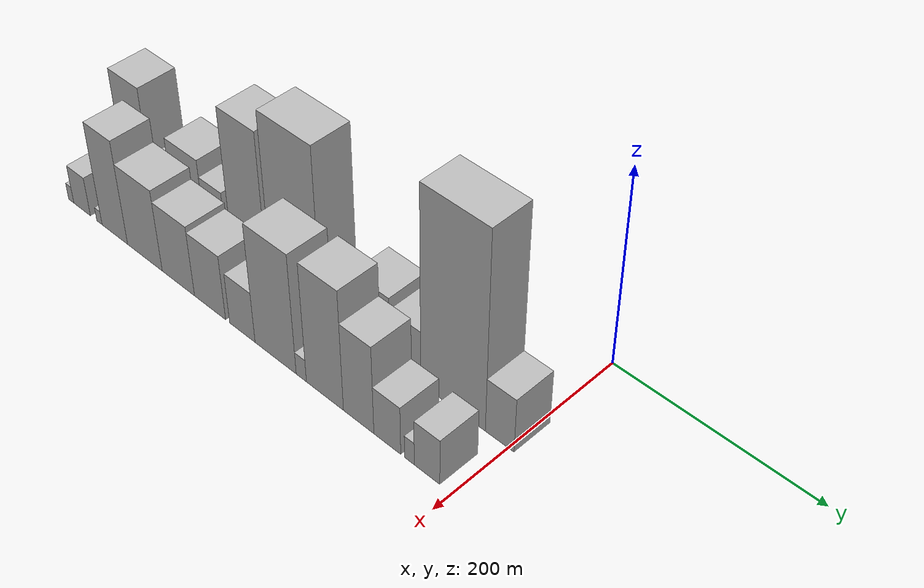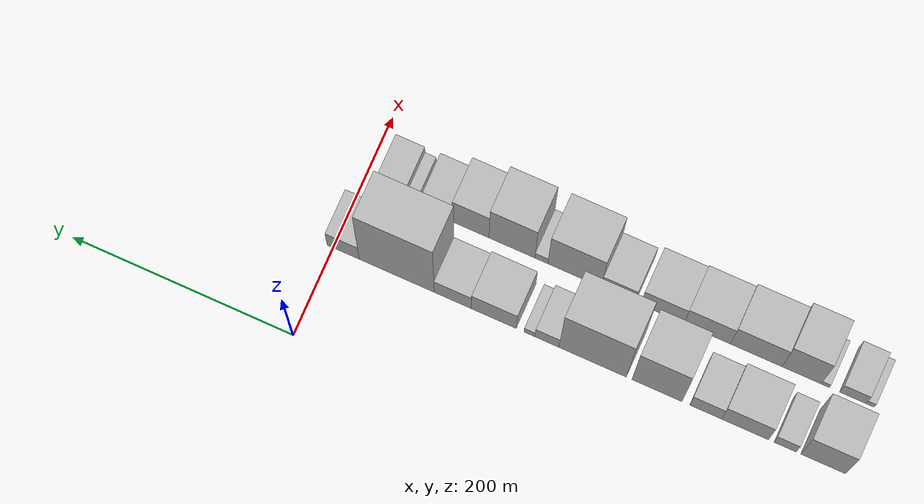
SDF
<sdf version="1.6">
 <world name="default">
  <model name="building_1">
   <static>1</static>
   <pose>100.0000 -440.0849 0 0.000000 0.000000 0.000000</pose>
   <link name="link">
    <pose>0 0 54.00 0 0 0</pose>
    <collision name="collision"><geometry><box><size>40.0000 39.8303 108.0000</size></box></geometry></collision>
    <visual name="visual">
     <cast_shadows>0</cast_shadows>
     <geometry><box><size>40.0000 39.8303 108.0000</size></box></geometry>
     <material>
      <script>
       <uri>model://HANNAS_wall/materials/scripts</uri>
       <uri>model://HANNAS_wall/materials/textures</uri>
       <name>vrc/HANNAS_wall</name>
      </script>
     </material>
    </visual>
   </link>
  </model>
  <model name="building_2">
   <static>1</static>
   <pose>100.0000 -406.2775 0 0.000000 0.000000 0.000000</pose>
   <link name="link">
    <pose>0 0 19.50 0 0 0</pose>
    <collision name="collision"><geometry><box><size>40.0000 19.7844 39.0000</size></box></geometry></collision>
    <visual name="visual">
     <cast_shadows>0</cast_shadows>
     <geometry><box><size>40.0000 19.7844 39.0000</size></box></geometry>
     <material>
      <script>
       <uri>model://HANNAS_wall/materials/scripts</uri>
       <uri>model://HANNAS_wall/materials/textures</uri>
       <name>vrc/HANNAS_wall</name>
      </script>
     </material>
    </visual>
   </link>
  </model>
  <model name="building_3">
   <static>1</static>
   <pose>100.0000 -370.4484 0 0.000000 0.000000 0.000000</pose>
   <link name="link">
    <pose>0 0 36.00 0 0 0</pose>
    <collision name="collision"><geometry><box><size>40.0000 41.8738 72.0000</size></box></geometry></collision>
    <visual name="visual">
     <cast_shadows>0</cast_shadows>
     <geometry><box><size>40.0000 41.8738 72.0000</size></box></geometry>
     <material>
      <script>
       <uri>model://HANNAS_wall/materials/scripts</uri>
       <uri>model://HANNAS_wall/materials/textures</uri>
       <name>vrc/HANNAS_wall</name>
      </script>
     </material>
    </visual>
   </link>
  </model>
  <model name="building_4">
   <static>1</static>
   <pose>100.0000 -335.2728 0 0.000000 0.000000 0.000000</pose>
   <link name="link">
    <pose>0 0 27.00 0 0 0</pose>
    <collision name="collision"><geometry><box><size>40.0000 28.4775 54.0000</size></box></geometry></collision>
    <visual name="visual">
     <cast_shadows>0</cast_shadows>
     <geometry><box><size>40.0000 28.4775 54.0000</size></box></geometry>
     <material>
      <script>
       <uri>model://HANNAS_wall/materials/scripts</uri>
       <uri>model://HANNAS_wall/materials/textures</uri>
       <name>vrc/HANNAS_wall</name>
      </script>
     </material>
    </visual>
   </link>
  </model>
  <model name="building_5">
   <static>1</static>
   <pose>100.0000 -291.6385 0 0.000000 0.000000 0.000000</pose>
   <link name="link">
    <pose>0 0 73.50 0 0 0</pose>
    <collision name="collision"><geometry><box><size>40.0000 44.7910 147.0000</size></box></geometry></collision>
    <visual name="visual">
     <cast_shadows>0</cast_shadows>
     <geometry><box><size>40.0000 44.7910 147.0000</size></box></geometry>
     <material>
      <script>
       <uri>model://HANNAS_wall/materials/scripts</uri>
       <uri>model://HANNAS_wall/materials/textures</uri>
       <name>vrc/HANNAS_wall</name>
      </script>
     </material>
    </visual>
   </link>
  </model>
  <model name="building_6">
   <static>1</static>
   <pose>100.0000 -233.9935 0 0.000000 0.000000 0.000000</pose>
   <link name="link">
    <pose>0 0 85.50 0 0 0</pose>
    <collision name="collision"><geometry><box><size>40.0000 60.4989 171.0000</size></box></geometry></collision>
    <visual name="visual">
     <cast_shadows>0</cast_shadows>
     <geometry><box><size>40.0000 60.4989 171.0000</size></box></geometry>
     <material>
      <script>
       <uri>model://HANNAS_wall/materials/scripts</uri>
       <uri>model://HANNAS_wall/materials/textures</uri>
       <name>vrc/HANNAS_wall</name>
      </script>
     </material>
    </visual>
   </link>
  </model>
  <model name="building_7">
   <static>1</static>
   <pose>100.0000 -192.8441 0 0.000000 0.000000 0.000000</pose>
   <link name="link">
    <pose>0 0 21.00 0 0 0</pose>
    <collision name="collision"><geometry><box><size>40.0000 21.8000 42.0000</size></box></geometry></collision>
    <visual name="visual">
     <cast_shadows>0</cast_shadows>
     <geometry><box><size>40.0000 21.8000 42.0000</size></box></geometry>
     <material>
      <script>
       <uri>model://HANNAS_wall/materials/scripts</uri>
       <uri>model://HANNAS_wall/materials/textures</uri>
       <name>vrc/HANNAS_wall</name>
      </script>
     </material>
    </visual>
   </link>
  </model>
  <model name="building_8">
   <static>1</static>
   <pose>100.0000 -177.0930 0 0.000000 0.000000 0.000000</pose>
   <link name="link">
    <pose>0 0 10.50 0 0 0</pose>
    <collision name="collision"><geometry><box><size>40.0000 9.7020 21.0000</size></box></geometry></collision>
    <visual name="visual">
     <cast_shadows>0</cast_shadows>
     <geometry><box><size>40.0000 9.7020 21.0000</size></box></geometry>
     <material>
      <script>
       <uri>model://HANNAS_wall/materials/scripts</uri>
       <uri>model://HANNAS_wall/materials/textures</uri>
       <name>vrc/HANNAS_wall</name>
      </script>
     </material>
    </visual>
   </link>
  </model>
  <model name="building_9">
   <static>1</static>
   <pose>100.0000 -144.9554 0 0.000000 0.000000 0.000000</pose>
   <link name="link">
    <pose>0 0 34.50 0 0 0</pose>
    <collision name="collision"><geometry><box><size>40.0000 40.5733 69.0000</size></box></geometry></collision>
    <visual name="visual">
     <cast_shadows>0</cast_shadows>
     <geometry><box><size>40.0000 40.5733 69.0000</size></box></geometry>
     <material>
      <script>
       <uri>model://HANNAS_wall/materials/scripts</uri>
       <uri>model://HANNAS_wall/materials/textures</uri>
       <name>vrc/HANNAS_wall</name>
      </script>
     </material>
    </visual>
   </link>
  </model>
  <model name="building_10">
   <static>1</static>
   <pose>100.0000 -107.9906 0 0.000000 0.000000 0.000000</pose>
   <link name="link">
    <pose>0 0 28.50 0 0 0</pose>
    <collision name="collision"><geometry><box><size>40.0000 33.3563 57.0000</size></box></geometry></collision>
    <visual name="visual">
     <cast_shadows>0</cast_shadows>
     <geometry><box><size>40.0000 33.3563 57.0000</size></box></geometry>
     <material>
      <script>
       <uri>model://HANNAS_wall/materials/scripts</uri>
       <uri>model://HANNAS_wall/materials/textures</uri>
       <name>vrc/HANNAS_wall</name>
      </script>
     </material>
    </visual>
   </link>
  </model>
  <model name="building_11">
   <static>1</static>
   <pose>100.0000 -57.4001 0 0.000000 0.000000 0.000000</pose>
   <link name="link">
    <pose>0 0 102.00 0 0 0</pose>
    <collision name="collision"><geometry><box><size>40.0000 67.8247 204.0000</size></box></geometry></collision>
    <visual name="visual">
     <cast_shadows>0</cast_shadows>
     <geometry><box><size>40.0000 67.8247 204.0000</size></box></geometry>
     <material>
      <script>
       <uri>model://HANNAS_wall/materials/scripts</uri>
       <uri>model://HANNAS_wall/materials/textures</uri>
       <name>vrc/HANNAS_wall</name>
      </script>
     </material>
    </visual>
   </link>
  </model>
  <model name="building_12">
   <static>1</static>
   <pose>100.0000 -8.9918 0 0.000000 0.000000 0.000000</pose>
   <link name="link">
    <pose>0 0 28.50 0 0 0</pose>
    <collision name="collision"><geometry><box><size>40.0000 28.9918 57.0000</size></box></geometry></collision>
    <visual name="visual">
     <cast_shadows>0</cast_shadows>
     <geometry><box><size>40.0000 28.9918 57.0000</size></box></geometry>
     <material>
      <script>
       <uri>model://HANNAS_wall/materials/scripts</uri>
       <uri>model://HANNAS_wall/materials/textures</uri>
       <name>vrc/HANNAS_wall</name>
      </script>
     </material>
    </visual>
   </link>
  </model>
  <model name="building_26">
   <static>1</static>
   <pose>160.0000 -456.3211 0 0.000000 0.000000 0.000000</pose>
   <link name="link">
    <pose>0 0 9.00 0 0 0</pose>
    <collision name="collision"><geometry><box><size>40.0000 7.3578 18.0000</size></box></geometry></collision>
    <visual name="visual">
     <cast_shadows>0</cast_shadows>
     <geometry><box><size>40.0000 7.3578 18.0000</size></box></geometry>
     <material>
      <script>
       <uri>model://HANNAS_wall/materials/scripts</uri>
       <uri>model://HANNAS_wall/materials/textures</uri>
       <name>vrc/HANNAS_wall</name>
      </script>
     </material>
    </visual>
   </link>
  </model>
  <model name="building_27">
   <static>1</static>
   <pose>160.0000 -440.8470 0 0.000000 0.000000 0.000000</pose>
   <link name="link">
    <pose>0 0 21.00 0 0 0</pose>
    <collision name="collision"><geometry><box><size>40.0000 23.5903 42.0000</size></box></geometry></collision>
    <visual name="visual">
     <cast_shadows>0</cast_shadows>
     <geometry><box><size>40.0000 23.5903 42.0000</size></box></geometry>
     <material>
      <script>
       <uri>model://HANNAS_wall/materials/scripts</uri>
       <uri>model://HANNAS_wall/materials/textures</uri>
       <name>vrc/HANNAS_wall</name>
      </script>
     </material>
    </visual>
   </link>
  </model>
  <model name="building_28">
   <static>1</static>
   <pose>160.0000 -416.3451 0 0.000000 0.000000 0.000000</pose>
   <link name="link">
    <pose>0 0 7.50 0 0 0</pose>
    <collision name="collision"><geometry><box><size>40.0000 7.4136 15.0000</size></box></geometry></collision>
    <visual name="visual">
     <cast_shadows>0</cast_shadows>
     <geometry><box><size>40.0000 7.4136 15.0000</size></box></geometry>
     <material>
      <script>
       <uri>model://HANNAS_wall/materials/scripts</uri>
       <uri>model://HANNAS_wall/materials/textures</uri>
       <name>vrc/HANNAS_wall</name>
      </script>
     </material>
    </visual>
   </link>
  </model>
  <model name="building_29">
   <static>1</static>
   <pose>160.0000 -395.1286 0 0.000000 0.000000 0.000000</pose>
   <link name="link">
    <pose>0 0 55.50 0 0 0</pose>
    <collision name="collision"><geometry><box><size>40.0000 35.0195 111.0000</size></box></geometry></collision>
    <visual name="visual">
     <cast_shadows>0</cast_shadows>
     <geometry><box><size>40.0000 35.0195 111.0000</size></box></geometry>
     <material>
      <script>
       <uri>model://HANNAS_wall/materials/scripts</uri>
       <uri>model://HANNAS_wall/materials/textures</uri>
       <name>vrc/HANNAS_wall</name>
      </script>
     </material>
    </visual>
   </link>
  </model>
  <model name="building_30">
   <static>1</static>
   <pose>160.0000 -354.5371 0 0.000000 0.000000 0.000000</pose>
   <link name="link">
    <pose>0 0 43.50 0 0 0</pose>
    <collision name="collision"><geometry><box><size>40.0000 46.1633 87.0000</size></box></geometry></collision>
    <visual name="visual">
     <cast_shadows>0</cast_shadows>
     <geometry><box><size>40.0000 46.1633 87.0000</size></box></geometry>
     <material>
      <script>
       <uri>model://HANNAS_wall/materials/scripts</uri>
       <uri>model://HANNAS_wall/materials/textures</uri>
       <name>vrc/HANNAS_wall</name>
      </script>
     </material>
    </visual>
   </link>
  </model>
  <model name="building_31">
   <static>1</static>
   <pose>160.0000 -310.6284 0 0.000000 0.000000 0.000000</pose>
   <link name="link">
    <pose>0 0 37.50 0 0 0</pose>
    <collision name="collision"><geometry><box><size>40.0000 41.6542 75.0000</size></box></geometry></collision>
    <visual name="visual">
     <cast_shadows>0</cast_shadows>
     <geometry><box><size>40.0000 41.6542 75.0000</size></box></geometry>
     <material>
      <script>
       <uri>model://HANNAS_wall/materials/scripts</uri>
       <uri>model://HANNAS_wall/materials/textures</uri>
       <name>vrc/HANNAS_wall</name>
      </script>
     </material>
    </visual>
   </link>
  </model>
  <model name="building_32">
   <static>1</static>
   <pose>160.0000 -270.4407 0 0.000000 0.000000 0.000000</pose>
   <link name="link">
    <pose>0 0 34.50 0 0 0</pose>
    <collision name="collision"><geometry><box><size>40.0000 38.7213 69.0000</size></box></geometry></collision>
    <visual name="visual">
     <cast_shadows>0</cast_shadows>
     <geometry><box><size>40.0000 38.7213 69.0000</size></box></geometry>
     <material>
      <script>
       <uri>model://HANNAS_wall/materials/scripts</uri>
       <uri>model://HANNAS_wall/materials/textures</uri>
       <name>vrc/HANNAS_wall</name>
      </script>
     </material>
    </visual>
   </link>
  </model>
  <model name="building_33">
   <static>1</static>
   <pose>160.0000 -230.6808 0 0.000000 0.000000 0.000000</pose>
   <link name="link">
    <pose>0 0 27.00 0 0 0</pose>
    <collision name="collision"><geometry><box><size>40.0000 30.7986 54.0000</size></box></geometry></collision>
    <visual name="visual">
     <cast_shadows>0</cast_shadows>
     <geometry><box><size>40.0000 30.7986 54.0000</size></box></geometry>
     <material>
      <script>
       <uri>model://HANNAS_wall/materials/scripts</uri>
       <uri>model://HANNAS_wall/materials/textures</uri>
       <name>vrc/HANNAS_wall</name>
      </script>
     </material>
    </visual>
   </link>
  </model>
  <model name="building_34">
   <static>1</static>
   <pose>160.0000 -191.2070 0 0.000000 0.000000 0.000000</pose>
   <link name="link">
    <pose>0 0 63.00 0 0 0</pose>
    <collision name="collision"><geometry><box><size>40.0000 48.1490 126.0000</size></box></geometry></collision>
    <visual name="visual">
     <cast_shadows>0</cast_shadows>
     <geometry><box><size>40.0000 48.1490 126.0000</size></box></geometry>
     <material>
      <script>
       <uri>model://HANNAS_wall/materials/scripts</uri>
       <uri>model://HANNAS_wall/materials/textures</uri>
       <name>vrc/HANNAS_wall</name>
      </script>
     </material>
    </visual>
   </link>
  </model>
  <model name="building_35">
   <static>1</static>
   <pose>160.0000 -161.2732 0 0.000000 0.000000 0.000000</pose>
   <link name="link">
    <pose>0 0 12.00 0 0 0</pose>
    <collision name="collision"><geometry><box><size>40.0000 11.7187 24.0000</size></box></geometry></collision>
    <visual name="visual">
     <cast_shadows>0</cast_shadows>
     <geometry><box><size>40.0000 11.7187 24.0000</size></box></geometry>
     <material>
      <script>
       <uri>model://HANNAS_wall/materials/scripts</uri>
       <uri>model://HANNAS_wall/materials/textures</uri>
       <name>vrc/HANNAS_wall</name>
      </script>
     </material>
    </visual>
   </link>
  </model>
  <model name="building_36">
   <static>1</static>
   <pose>160.0000 -134.6918 0 0.000000 0.000000 0.000000</pose>
   <link name="link">
    <pose>0 0 63.00 0 0 0</pose>
    <collision name="collision"><geometry><box><size>40.0000 41.4441 126.0000</size></box></geometry></collision>
    <visual name="visual">
     <cast_shadows>0</cast_shadows>
     <geometry><box><size>40.0000 41.4441 126.0000</size></box></geometry>
     <material>
      <script>
       <uri>model://HANNAS_wall/materials/scripts</uri>
       <uri>model://HANNAS_wall/materials/textures</uri>
       <name>vrc/HANNAS_wall</name>
      </script>
     </material>
    </visual>
   </link>
  </model>
  <model name="building_37">
   <static>1</static>
   <pose>160.0000 -97.4610 0 0.000000 0.000000 0.000000</pose>
   <link name="link">
    <pose>0 0 46.50 0 0 0</pose>
    <collision name="collision"><geometry><box><size>40.0000 33.0175 93.0000</size></box></geometry></collision>
    <visual name="visual">
     <cast_shadows>0</cast_shadows>
     <geometry><box><size>40.0000 33.0175 93.0000</size></box></geometry>
     <material>
      <script>
       <uri>model://HANNAS_wall/materials/scripts</uri>
       <uri>model://HANNAS_wall/materials/textures</uri>
       <name>vrc/HANNAS_wall</name>
      </script>
     </material>
    </visual>
   </link>
  </model>
  <model name="building_38">
   <static>1</static>
   <pose>160.0000 -66.7490 0 0.000000 0.000000 0.000000</pose>
   <link name="link">
    <pose>0 0 25.50 0 0 0</pose>
    <collision name="collision"><geometry><box><size>40.0000 28.4066 51.0000</size></box></geometry></collision>
    <visual name="visual">
     <cast_shadows>0</cast_shadows>
     <geometry><box><size>40.0000 28.4066 51.0000</size></box></geometry>
     <material>
      <script>
       <uri>model://HANNAS_wall/materials/scripts</uri>
       <uri>model://HANNAS_wall/materials/textures</uri>
       <name>vrc/HANNAS_wall</name>
      </script>
     </material>
    </visual>
   </link>
  </model>
  <model name="building_39">
   <static>1</static>
   <pose>160.0000 -43.5140 0 0.000000 0.000000 0.000000</pose>
   <link name="link">
    <pose>0 0 12.00 0 0 0</pose>
    <collision name="collision"><geometry><box><size>40.0000 10.0635 24.0000</size></box></geometry></collision>
    <visual name="visual">
     <cast_shadows>0</cast_shadows>
     <geometry><box><size>40.0000 10.0635 24.0000</size></box></geometry>
     <material>
      <script>
       <uri>model://HANNAS_wall/materials/scripts</uri>
       <uri>model://HANNAS_wall/materials/textures</uri>
       <name>vrc/HANNAS_wall</name>
      </script>
     </material>
    </visual>
   </link>
  </model>
  <model name="building_40">
   <static>1</static>
   <pose>160.0000 -25.4623 0 0.000000 0.000000 0.000000</pose>
   <link name="link">
    <pose>0 0 24.00 0 0 0</pose>
    <collision name="collision"><geometry><box><size>40.0000 26.0398 48.0000</size></box></geometry></collision>
    <visual name="visual">
     <cast_shadows>0</cast_shadows>
     <geometry><box><size>40.0000 26.0398 48.0000</size></box></geometry>
     <material>
      <script>
       <uri>model://HANNAS_wall/materials/scripts</uri>
       <uri>model://HANNAS_wall/materials/textures</uri>
       <name>vrc/HANNAS_wall</name>
      </script>
     </material>
    </visual>
   </link>
  </model>
 </world>
</sdf>
